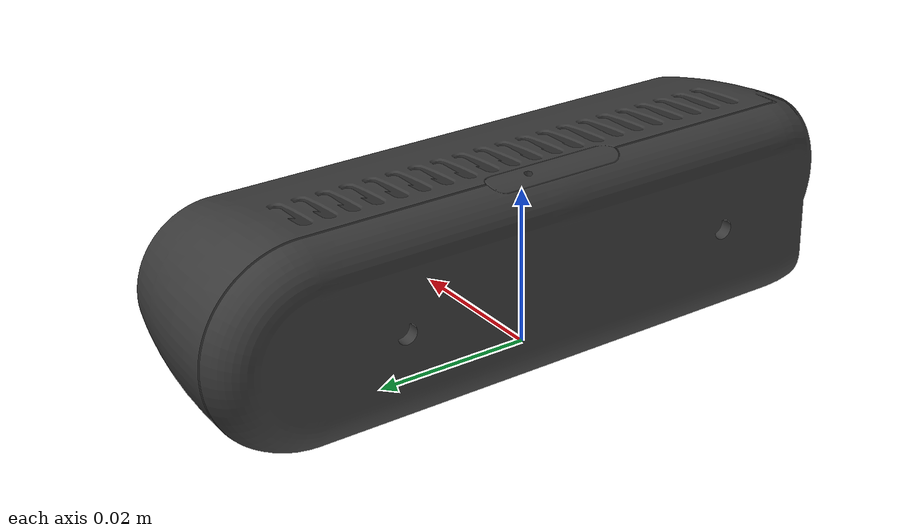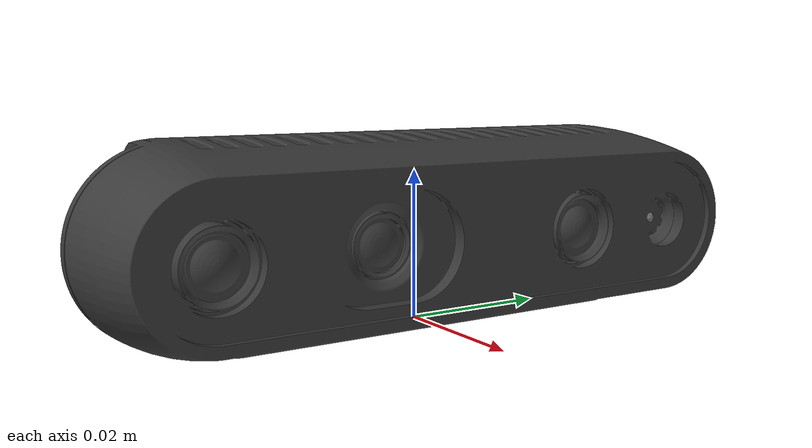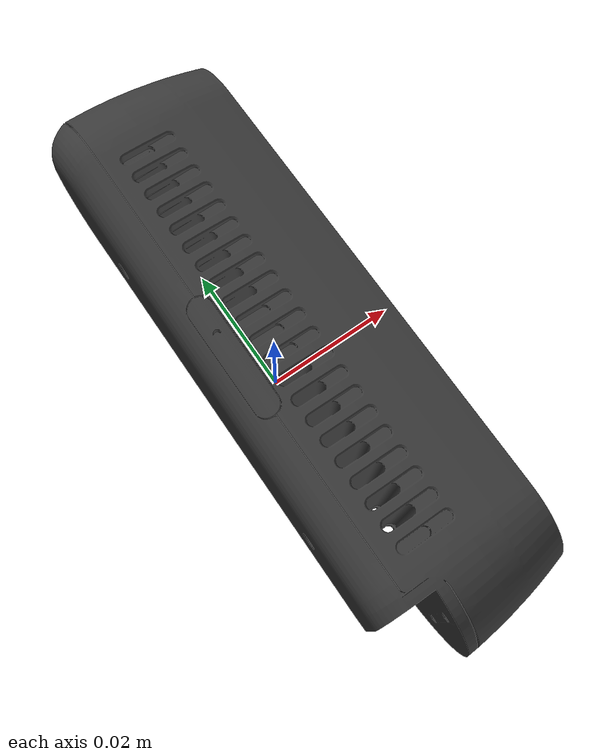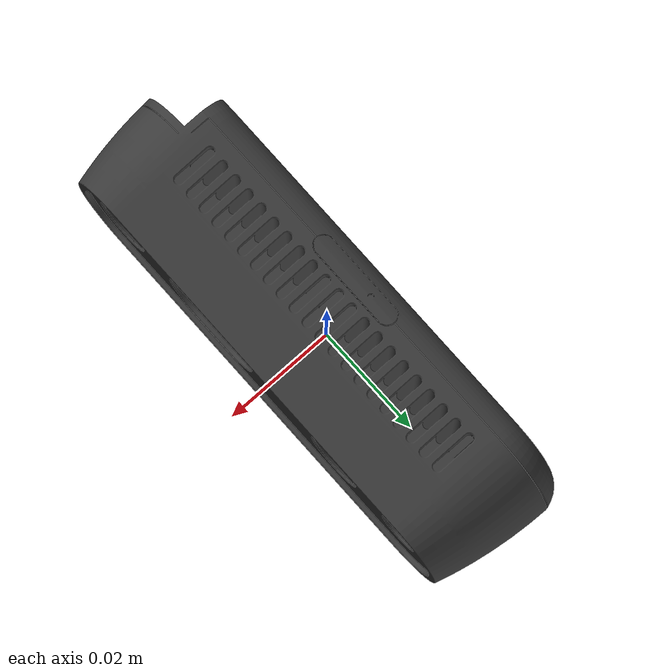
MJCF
<?xml version="1.0" encoding="utf-8"?>
<mujoco model="realsense_d435">
  <compiler angle="radian" meshdir="meshes/realsense_d435" inertiafromgeom="false" fusestatic="false"/>
  <default>
    <geom density="0"/>
    <default class="visual">
      <geom contype="0" conaffinity="0" group="2" density="0"/>
    </default>
  </default>
  <asset>
    <material name="d435_aluminum" rgba="0.23 0.23 0.23 1"/>
    <mesh name="d435_visual" file="visual/d435.obj"/>
  </asset>
  <worldbody>
    <!-- Root is the official D435 bottom-screw mounting frame. -->
    <body name="d435_bottom_screw_frame">
      <body name="d435_link" pos="0.0106 0.0175 0.0125">
        <!-- Official _d435.urdf.xacro visual mesh transform. -->
        <geom class="visual" type="mesh" mesh="d435_visual" material="d435_aluminum"
              pos="0.0043 -0.0175 0" quat="0.5 0.5 0.5 0.5"/>
        <site name="d435_depth_frame" size="0.001"/>
        <site name="d435_depth_optical_frame" size="0.001" quat="0.5 -0.5 0.5 -0.5"/>
        <site name="d435_infra1_frame" size="0.001"/>
        <site name="d435_infra1_optical_frame" size="0.001" quat="0.5 -0.5 0.5 -0.5"/>
        <site name="d435_infra2_frame" size="0.001" pos="0 -0.05 0"/>
        <site name="d435_infra2_optical_frame" size="0.001" pos="0 -0.05 0" quat="0.5 -0.5 0.5 -0.5"/>
        <site name="d435_color_frame" size="0.001" pos="0 0.015 0"/>
        <site name="d435_color_optical_frame" size="0.001" pos="0 0.015 0" quat="0.5 -0.5 0.5 -0.5"/>
        <!-- MuJoCo camera uses -Z forward; this is the ROS optical frame plus
             Rx(pi), so its viewing direction equals ROS optical +Z. -->
        <camera name="d435_rgb" pos="0 0.015 0" quat="0.5 0.5 -0.5 -0.5"
                fovy="42.5" resolution="1280 720"/>
        <camera name="d435_depth" pos="0 0 0" quat="0.5 0.5 -0.5 -0.5"
                fovy="58" resolution="1280 720"/>
      </body>
    </body>
  </worldbody>
</mujoco>
